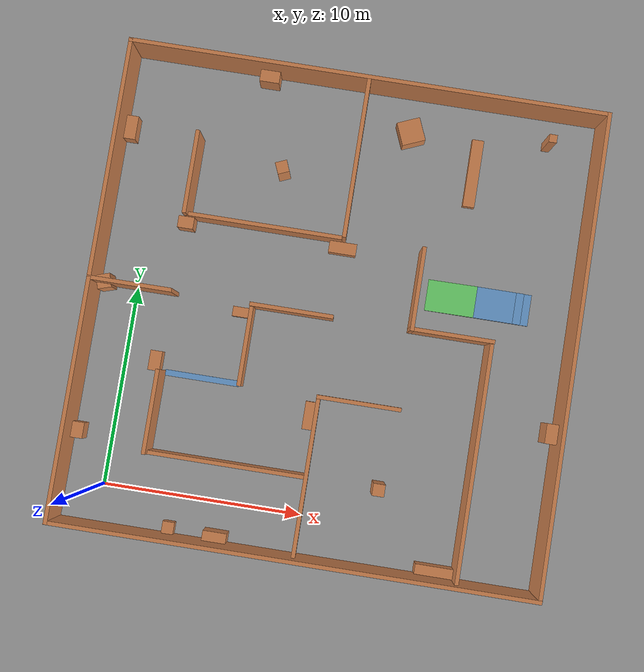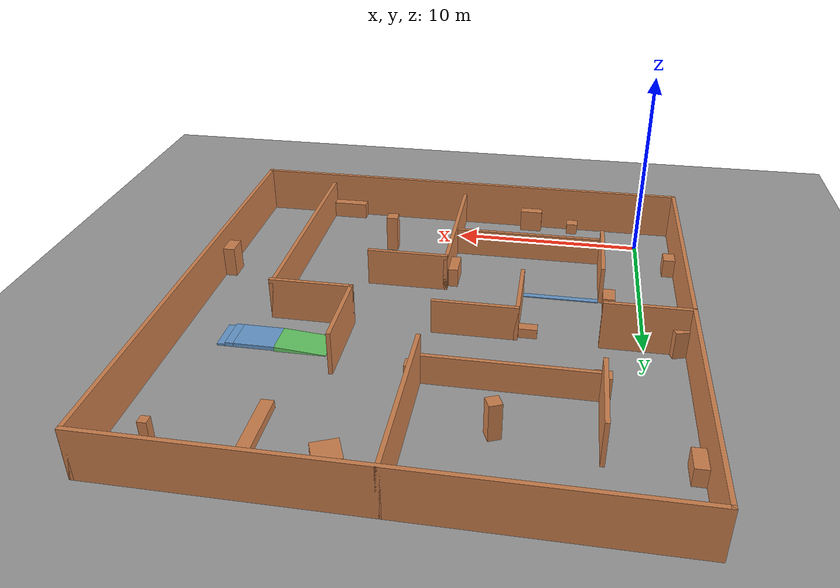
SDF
<?xml version="1.0"?>
<!-- Generated by kyon_navigation/scripts/terrain.py: edit its world .yaml (kyon_navigation/worlds) instead -->
<sdf version="1.9">
  <world name="maze">
    <gravity>0.0 0.0 -9.81</gravity>
    <physics name="1ms" type="ignored">
      <max_step_size>0.001</max_step_size>
      <real_time_factor>1.0</real_time_factor>
    </physics>
    <plugin filename="gz-sim-physics-system" name="gz::sim::systems::Physics"/>
    <plugin filename="gz-sim-user-commands-system" name="gz::sim::systems::UserCommands"/>
    <plugin filename="gz-sim-scene-broadcaster-system" name="gz::sim::systems::SceneBroadcaster"/>
    <plugin filename="gz-sim-sensors-system" name="gz::sim::systems::Sensors">
      <render_engine>ogre2</render_engine>
    </plugin>
    <scene>
      <ambient>0.6 0.6 0.6 1</ambient>
      <background>0.7 0.8 0.9 1</background>
      <shadows>false</shadows>
    </scene>
    <light type="directional" name="sun">
      <pose>0 0 10 0 0 0</pose>
      <diffuse>0.9 0.9 0.9 1</diffuse>
      <direction>-0.4 0.2 -1</direction>
    </light>
    <model name="ground">
      <static>true</static>
      <link name="link">
        <collision name="collision">
          <geometry><plane><normal>0 0 1</normal><size>40.0 40.0</size></plane></geometry>
        </collision>
        <visual name="visual">
          <geometry><plane><normal>0 0 1</normal><size>40.0 40.0</size></plane></geometry>
          <material><ambient>0.6 0.6 0.6 1</ambient><diffuse>0.6 0.6 0.6 1</diffuse></material>
        </visual>
      </link>
    </model>
    <model name="wall_ew_0_0">
      <static>true</static>
      <pose>10.0 22.0 1.25 0 0 0.0</pose>
      <link name="link">
        <collision name="collision"><geometry><box><size>24.2 0.2 2.5</size></box></geometry></collision>
        <visual name="visual">
          <geometry><box><size>24.2 0.2 2.5</size></box></geometry>
          <material><ambient>0.8 0.5 0.3 1</ambient><diffuse>0.8 0.5 0.3 1</diffuse></material>
        </visual>
      </link>
    </model>
    <model name="wall_ew_4_2">
      <static>true</static>
      <pose>6.0 14.0 0.75 0 0 0.0</pose>
      <link name="link">
        <collision name="collision"><geometry><box><size>8.2 0.2 1.5</size></box></geometry></collision>
        <visual name="visual">
          <geometry><box><size>8.2 0.2 1.5</size></box></geometry>
          <material><ambient>0.8 0.5 0.3 1</ambient><diffuse>0.8 0.5 0.3 1</diffuse></material>
        </visual>
      </link>
    </model>
    <model name="wall_ew_6_0">
      <static>true</static>
      <pose>0.0 10.0 1.25 0 0 0.0</pose>
      <link name="link">
        <collision name="collision"><geometry><box><size>4.2 0.2 2.5</size></box></geometry></collision>
        <visual name="visual">
          <geometry><box><size>4.2 0.2 2.5</size></box></geometry>
          <material><ambient>0.8 0.5 0.3 1</ambient><diffuse>0.8 0.5 0.3 1</diffuse></material>
        </visual>
      </link>
    </model>
    <model name="wall_ew_6_4">
      <static>true</static>
      <pose>8.0 10.0 0.9 0 0 0.0</pose>
      <link name="link">
        <collision name="collision"><geometry><box><size>4.2 0.2 1.8</size></box></geometry></collision>
        <visual name="visual">
          <geometry><box><size>4.2 0.2 1.8</size></box></geometry>
          <material><ambient>0.8 0.5 0.3 1</ambient><diffuse>0.8 0.5 0.3 1</diffuse></material>
        </visual>
      </link>
    </model>
    <model name="wall_ew_6_8">
      <static>true</static>
      <pose>16.0 10.0 1.1 0 0 0.0</pose>
      <link name="link">
        <collision name="collision"><geometry><box><size>4.2 0.2 2.2</size></box></geometry></collision>
        <visual name="visual">
          <geometry><box><size>4.2 0.2 2.2</size></box></geometry>
          <material><ambient>0.8 0.5 0.3 1</ambient><diffuse>0.8 0.5 0.3 1</diffuse></material>
        </visual>
      </link>
    </model>
    <model name="wall_ew_8_6">
      <static>true</static>
      <pose>12.0 6.0 1.0 0 0 0.0</pose>
      <link name="link">
        <collision name="collision"><geometry><box><size>4.2 0.2 2.0</size></box></geometry></collision>
        <visual name="visual">
          <geometry><box><size>4.2 0.2 2.0</size></box></geometry>
          <material><ambient>0.8 0.5 0.3 1</ambient><diffuse>0.8 0.5 0.3 1</diffuse></material>
        </visual>
      </link>
    </model>
    <model name="wall_ew_10_2">
      <static>true</static>
      <pose>6.0 2.0 0.75 0 0 0.0</pose>
      <link name="link">
        <collision name="collision"><geometry><box><size>8.2 0.2 1.5</size></box></geometry></collision>
        <visual name="visual">
          <geometry><box><size>8.2 0.2 1.5</size></box></geometry>
          <material><ambient>0.8 0.5 0.3 1</ambient><diffuse>0.8 0.5 0.3 1</diffuse></material>
        </visual>
      </link>
    </model>
    <model name="wall_ew_12_0">
      <static>true</static>
      <pose>10.0 -2.0 1.25 0 0 0.0</pose>
      <link name="link">
        <collision name="collision"><geometry><box><size>24.2 0.2 2.5</size></box></geometry></collision>
        <visual name="visual">
          <geometry><box><size>24.2 0.2 2.5</size></box></geometry>
          <material><ambient>0.8 0.5 0.3 1</ambient><diffuse>0.8 0.5 0.3 1</diffuse></material>
        </visual>
      </link>
    </model>
    <model name="wall_ns_0_0">
      <static>true</static>
      <pose>-2.0 10.0 1.25 0 0 0.0</pose>
      <link name="link">
        <collision name="collision"><geometry><box><size>0.2 24.2 2.5</size></box></geometry></collision>
        <visual name="visual">
          <geometry><box><size>0.2 24.2 2.5</size></box></geometry>
          <material><ambient>0.8 0.5 0.3 1</ambient><diffuse>0.8 0.5 0.3 1</diffuse></material>
        </visual>
      </link>
    </model>
    <model name="wall_ns_2_2">
      <static>true</static>
      <pose>2.0 16.0 1.1 0 0 0.0</pose>
      <link name="link">
        <collision name="collision"><geometry><box><size>0.2 4.2 2.2</size></box></geometry></collision>
        <visual name="visual">
          <geometry><box><size>0.2 4.2 2.2</size></box></geometry>
          <material><ambient>0.8 0.5 0.3 1</ambient><diffuse>0.8 0.5 0.3 1</diffuse></material>
        </visual>
      </link>
    </model>
    <model name="wall_ns_2_8">
      <static>true</static>
      <pose>2.0 4.0 1.0 0 0 0.0</pose>
      <link name="link">
        <collision name="collision"><geometry><box><size>0.2 4.2 2.0</size></box></geometry></collision>
        <visual name="visual">
          <geometry><box><size>0.2 4.2 2.0</size></box></geometry>
          <material><ambient>0.8 0.5 0.3 1</ambient><diffuse>0.8 0.5 0.3 1</diffuse></material>
        </visual>
      </link>
    </model>
    <model name="wall_ns_4_6">
      <static>true</static>
      <pose>6.0 8.0 0.75 0 0 0.0</pose>
      <link name="link">
        <collision name="collision"><geometry><box><size>0.2 4.2 1.5</size></box></geometry></collision>
        <visual name="visual">
          <geometry><box><size>0.2 4.2 1.5</size></box></geometry>
          <material><ambient>0.8 0.5 0.3 1</ambient><diffuse>0.8 0.5 0.3 1</diffuse></material>
        </visual>
      </link>
    </model>
    <model name="wall_ns_6_0">
      <static>true</static>
      <pose>10.0 18.0 1.25 0 0 0.0</pose>
      <link name="link">
        <collision name="collision"><geometry><box><size>0.2 8.2 2.5</size></box></geometry></collision>
        <visual name="visual">
          <geometry><box><size>0.2 8.2 2.5</size></box></geometry>
          <material><ambient>0.8 0.5 0.3 1</ambient><diffuse>0.8 0.5 0.3 1</diffuse></material>
        </visual>
      </link>
    </model>
    <model name="wall_ns_6_8">
      <static>true</static>
      <pose>10.0 2.0 0.9 0 0 0.0</pose>
      <link name="link">
        <collision name="collision"><geometry><box><size>0.2 8.2 1.8</size></box></geometry></collision>
        <visual name="visual">
          <geometry><box><size>0.2 8.2 1.8</size></box></geometry>
          <material><ambient>0.8 0.5 0.3 1</ambient><diffuse>0.8 0.5 0.3 1</diffuse></material>
        </visual>
      </link>
    </model>
    <model name="wall_ns_8_4">
      <static>true</static>
      <pose>14.0 12.0 1.1 0 0 0.0</pose>
      <link name="link">
        <collision name="collision"><geometry><box><size>0.2 4.2 2.2</size></box></geometry></collision>
        <visual name="visual">
          <geometry><box><size>0.2 4.2 2.2</size></box></geometry>
          <material><ambient>0.8 0.5 0.3 1</ambient><diffuse>0.8 0.5 0.3 1</diffuse></material>
        </visual>
      </link>
    </model>
    <model name="wall_ns_10_6">
      <static>true</static>
      <pose>18.0 4.0 1.0 0 0 0.0</pose>
      <link name="link">
        <collision name="collision"><geometry><box><size>0.2 12.2 2.0</size></box></geometry></collision>
        <visual name="visual">
          <geometry><box><size>0.2 12.2 2.0</size></box></geometry>
          <material><ambient>0.8 0.5 0.3 1</ambient><diffuse>0.8 0.5 0.3 1</diffuse></material>
        </visual>
      </link>
    </model>
    <model name="wall_ns_12_0">
      <static>true</static>
      <pose>22.0 10.0 1.25 0 0 0.0</pose>
      <link name="link">
        <collision name="collision"><geometry><box><size>0.2 24.2 2.5</size></box></geometry></collision>
        <visual name="visual">
          <geometry><box><size>0.2 24.2 2.5</size></box></geometry>
          <material><ambient>0.8 0.5 0.3 1</ambient><diffuse>0.8 0.5 0.3 1</diffuse></material>
        </visual>
      </link>
    </model>
    <model name="clutter_0">
      <static>true</static>
      <pose>-1.6 2.5 0.5 0 0 0.0</pose>
      <link name="link">
        <collision name="collision"><geometry><box><size>0.6 0.8 1.0</size></box></geometry></collision>
        <visual name="visual">
          <geometry><box><size>0.6 0.8 1.0</size></box></geometry>
          <material><ambient>0.8 0.5 0.3 1</ambient><diffuse>0.8 0.5 0.3 1</diffuse></material>
        </visual>
      </link>
    </model>
    <model name="clutter_1">
      <static>true</static>
      <pose>3.6 -1.6 0.3 0 0 0.0</pose>
      <link name="link">
        <collision name="collision"><geometry><box><size>0.6 0.6 0.6</size></box></geometry></collision>
        <visual name="visual">
          <geometry><box><size>0.6 0.6 0.6</size></box></geometry>
          <material><ambient>0.8 0.5 0.3 1</ambient><diffuse>0.8 0.5 0.3 1</diffuse></material>
        </visual>
      </link>
    </model>
    <model name="clutter_2">
      <static>true</static>
      <pose>6.0 -1.6 0.6 0 0 0.0</pose>
      <link name="link">
        <collision name="collision"><geometry><box><size>1.2 0.5 1.2</size></box></geometry></collision>
        <visual name="visual">
          <geometry><box><size>1.2 0.5 1.2</size></box></geometry>
          <material><ambient>0.8 0.5 0.3 1</ambient><diffuse>0.8 0.5 0.3 1</diffuse></material>
        </visual>
      </link>
    </model>
    <model name="clutter_3">
      <static>true</static>
      <pose>1.6 6.5 0.4 0 0 0.0</pose>
      <link name="link">
        <collision name="collision"><geometry><box><size>0.6 1.0 0.8</size></box></geometry></collision>
        <visual name="visual">
          <geometry><box><size>0.6 1.0 0.8</size></box></geometry>
          <material><ambient>0.8 0.5 0.3 1</ambient><diffuse>0.8 0.5 0.3 1</diffuse></material>
        </visual>
      </link>
    </model>
    <model name="clutter_4">
      <static>true</static>
      <pose>-1.5 10.0 0.7 0 0 0.3</pose>
      <link name="link">
        <collision name="collision"><geometry><box><size>0.7 0.7 1.4</size></box></geometry></collision>
        <visual name="visual">
          <geometry><box><size>0.7 0.7 1.4</size></box></geometry>
          <material><ambient>0.8 0.5 0.3 1</ambient><diffuse>0.8 0.5 0.3 1</diffuse></material>
        </visual>
      </link>
    </model>
    <model name="clutter_5">
      <static>true</static>
      <pose>5.5 9.6 0.25 0 0 0.0</pose>
      <link name="link">
        <collision name="collision"><geometry><box><size>1.0 0.5 0.5</size></box></geometry></collision>
        <visual name="visual">
          <geometry><box><size>1.0 0.5 0.5</size></box></geometry>
          <material><ambient>0.8 0.5 0.3 1</ambient><diffuse>0.8 0.5 0.3 1</diffuse></material>
        </visual>
      </link>
    </model>
    <model name="clutter_6">
      <static>true</static>
      <pose>9.65 5.0 0.5 0 0 0.0</pose>
      <link name="link">
        <collision name="collision"><geometry><box><size>0.5 1.4 1.0</size></box></geometry></collision>
        <visual name="visual">
          <geometry><box><size>0.5 1.4 1.0</size></box></geometry>
          <material><ambient>0.8 0.5 0.3 1</ambient><diffuse>0.8 0.5 0.3 1</diffuse></material>
        </visual>
      </link>
    </model>
    <model name="clutter_7">
      <static>true</static>
      <pose>17.0 -1.6 0.45 0 0 0.0</pose>
      <link name="link">
        <collision name="collision"><geometry><box><size>2.0 0.5 0.9</size></box></geometry></collision>
        <visual name="visual">
          <geometry><box><size>2.0 0.5 0.9</size></box></geometry>
          <material><ambient>0.8 0.5 0.3 1</ambient><diffuse>0.8 0.5 0.3 1</diffuse></material>
        </visual>
      </link>
    </model>
    <model name="clutter_8">
      <static>true</static>
      <pose>21.6 6.0 0.8 0 0 0.0</pose>
      <link name="link">
        <collision name="collision"><geometry><box><size>0.6 1.0 1.6</size></box></geometry></collision>
        <visual name="visual">
          <geometry><box><size>0.6 1.0 1.6</size></box></geometry>
          <material><ambient>0.8 0.5 0.3 1</ambient><diffuse>0.8 0.5 0.3 1</diffuse></material>
        </visual>
      </link>
    </model>
    <model name="clutter_9">
      <static>true</static>
      <pose>10.0 13.6 0.35 0 0 0.0</pose>
      <link name="link">
        <collision name="collision"><geometry><box><size>1.4 0.6 0.7</size></box></geometry></collision>
        <visual name="visual">
          <geometry><box><size>1.4 0.6 0.7</size></box></geometry>
          <material><ambient>0.8 0.5 0.3 1</ambient><diffuse>0.8 0.5 0.3 1</diffuse></material>
        </visual>
      </link>
    </model>
    <model name="clutter_10">
      <static>true</static>
      <pose>2.0 13.6 0.55 0 0 0.0</pose>
      <link name="link">
        <collision name="collision"><geometry><box><size>0.8 0.6 1.1</size></box></geometry></collision>
        <visual name="visual">
          <geometry><box><size>0.8 0.6 1.1</size></box></geometry>
          <material><ambient>0.8 0.5 0.3 1</ambient><diffuse>0.8 0.5 0.3 1</diffuse></material>
        </visual>
      </link>
    </model>
    <model name="clutter_11">
      <static>true</static>
      <pose>-1.6 18.0 0.45 0 0 0.0</pose>
      <link name="link">
        <collision name="collision"><geometry><box><size>0.6 1.2 0.9</size></box></geometry></collision>
        <visual name="visual">
          <geometry><box><size>0.6 1.2 0.9</size></box></geometry>
          <material><ambient>0.8 0.5 0.3 1</ambient><diffuse>0.8 0.5 0.3 1</diffuse></material>
        </visual>
      </link>
    </model>
    <model name="clutter_12">
      <static>true</static>
      <pose>5.0 21.6 0.65 0 0 0.0</pose>
      <link name="link">
        <collision name="collision"><geometry><box><size>1.0 0.6 1.3</size></box></geometry></collision>
        <visual name="visual">
          <geometry><box><size>1.0 0.6 1.3</size></box></geometry>
          <material><ambient>0.8 0.5 0.3 1</ambient><diffuse>0.8 0.5 0.3 1</diffuse></material>
        </visual>
      </link>
    </model>
    <model name="post_1">
      <static>true</static>
      <pose>13.6 2.0 1.0 0 0 0.0</pose>
      <link name="link">
        <collision name="collision"><geometry><box><size>0.6 0.6 2.0</size></box></geometry></collision>
        <visual name="visual">
          <geometry><box><size>0.6 0.6 2.0</size></box></geometry>
          <material><ambient>0.8 0.5 0.3 1</ambient><diffuse>0.8 0.5 0.3 1</diffuse></material>
        </visual>
      </link>
    </model>
    <model name="post_2">
      <static>true</static>
      <pose>6.4 17.0 0.9 0 0 0.4</pose>
      <link name="link">
        <collision name="collision"><geometry><box><size>0.6 0.6 1.8</size></box></geometry></collision>
        <visual name="visual">
          <geometry><box><size>0.6 0.6 1.8</size></box></geometry>
          <material><ambient>0.8 0.5 0.3 1</ambient><diffuse>0.8 0.5 0.3 1</diffuse></material>
        </visual>
      </link>
    </model>
    <model name="blocks">
      <static>true</static>
      <pose>16.0 18.5 0.2 0 0 0.0</pose>
      <link name="link">
        <collision name="collision"><geometry><box><size>0.6 3.5 0.4</size></box></geometry></collision>
        <visual name="visual">
          <geometry><box><size>0.6 3.5 0.4</size></box></geometry>
          <material><ambient>0.8 0.5 0.3 1</ambient><diffuse>0.8 0.5 0.3 1</diffuse></material>
        </visual>
      </link>
    </model>
    <model name="tall_box">
      <static>true</static>
      <pose>12.5 20.0 0.5 0 0 0.4</pose>
      <link name="link">
        <collision name="collision"><geometry><box><size>1.2 1.2 1.0</size></box></geometry></collision>
        <visual name="visual">
          <geometry><box><size>1.2 1.2 1.0</size></box></geometry>
          <material><ambient>0.8 0.5 0.3 1</ambient><diffuse>0.8 0.5 0.3 1</diffuse></material>
        </visual>
      </link>
    </model>
    <model name="pillar_1">
      <static>true</static>
      <pose>19.5 20.5 1.0 0 0 0.0</pose>
      <link name="link">
        <collision name="collision"><geometry><box><size>0.4 0.4 2.0</size></box></geometry></collision>
        <visual name="visual">
          <geometry><box><size>0.4 0.4 2.0</size></box></geometry>
          <material><ambient>0.8 0.5 0.3 1</ambient><diffuse>0.8 0.5 0.3 1</diffuse></material>
        </visual>
      </link>
    </model>
    <model name="ramp">
      <static>true</static>
      <pose>15.865949044456578 12.0 -0.099363055707225 0 -0.07982998571223732 0.0</pose>
      <link name="link">
        <collision name="collision"><geometry><box><size>2.5079872407968904 1.6 0.4</size></box></geometry></collision>
        <visual name="visual">
          <geometry><box><size>2.5079872407968904 1.6 0.4</size></box></geometry>
          <material><ambient>0.4 0.8 0.4 1</ambient><diffuse>0.4 0.8 0.4 1</diffuse></material>
        </visual>
      </link>
    </model>
    <model name="platform">
      <static>true</static>
      <pose>18.1 12.0 0.1 0 0 0.0</pose>
      <link name="link">
        <collision name="collision"><geometry><box><size>2.0 1.6 0.2</size></box></geometry></collision>
        <visual name="visual">
          <geometry><box><size>2.0 1.6 0.2</size></box></geometry>
          <material><ambient>0.4 0.6 0.8 1</ambient><diffuse>0.4 0.6 0.8 1</diffuse></material>
        </visual>
      </link>
    </model>
    <model name="curb">
      <static>true</static>
      <pose>4.0 6.0 0.025 0 0 0.0</pose>
      <link name="link">
        <collision name="collision"><geometry><box><size>3.8 0.3 0.05</size></box></geometry></collision>
        <visual name="visual">
          <geometry><box><size>3.8 0.3 0.05</size></box></geometry>
          <material><ambient>0.4 0.6 0.8 1</ambient><diffuse>0.4 0.6 0.8 1</diffuse></material>
        </visual>
      </link>
    </model>
    <model name="steps_down_0">
      <static>true</static>
      <pose>19.7 12.0 0.05 0 0 3.14159265</pose>
      <link name="link">
        <collision name="collision"><geometry><box><size>0.4 1.6 0.1</size></box></geometry></collision>
        <visual name="visual">
          <geometry><box><size>0.4 1.6 0.1</size></box></geometry>
          <material><ambient>0.4 0.6 0.8 1</ambient><diffuse>0.4 0.6 0.8 1</diffuse></material>
        </visual>
      </link>
    </model>
    <model name="steps_down_1">
      <static>true</static>
      <pose>19.3 12.000000001435918 0.1 0 0 3.14159265</pose>
      <link name="link">
        <collision name="collision"><geometry><box><size>0.4 1.6 0.2</size></box></geometry></collision>
        <visual name="visual">
          <geometry><box><size>0.4 1.6 0.2</size></box></geometry>
          <material><ambient>0.4 0.6 0.8 1</ambient><diffuse>0.4 0.6 0.8 1</diffuse></material>
        </visual>
      </link>
    </model>
  </world>
</sdf>
